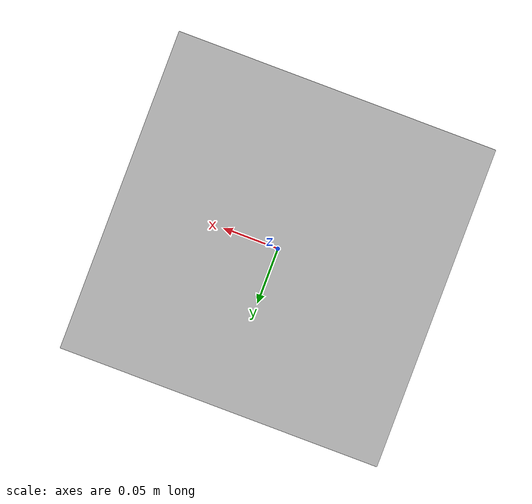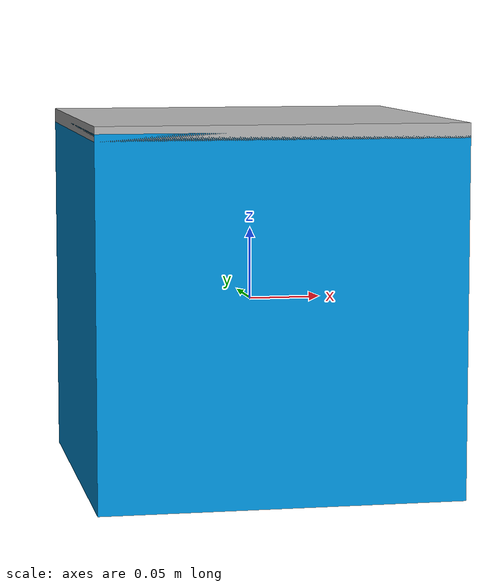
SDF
<?xml version="1.0" ?>
<sdf version="1.6">
  <model name="qr_box_marker_13">
    <static>true</static>
    <link name="link">

      <!-- Top face with QR code texture -->
      <visual name="top_face">
        <geometry>
          <box>
            <size>0.25 0.25 0.01</size> <!-- Reduced dimensions to half -->
          </box>
        </geometry>
        <material>
          <script>
            <uri>model://qr_box_marker_13/materials/scripts</uri>
            <uri>model://qr_box_marker_13/materials/textures/qr_code_13.png</uri>
            <name>qr_code_material_13</name>
          </script>
        </material>
        <pose>0 0 0.125 0 0 0</pose>
      </visual>

      <!-- Side faces with flat color -->
      <visual name="side_faces">
        <geometry>
          <box>
            <size>0.25 0.25 0.25</size> <!-- Reduced dimensions to half -->
          </box>
        </geometry>
        <material>
          <ambient>0.0 0.6 0.9 1</ambient>    <!-- Light blue -->
          <diffuse>0.0 0.6 0.9 1</diffuse>
          <specular>0.1 0.1 0.1 1</specular>
          <emissive>0 0 0 1</emissive>
        </material>
      </visual>

      <!-- Collision box -->
      <collision name="collision">
        <geometry>
          <box>
            <size>0.25 0.25 0.25</size> <!-- Reduced dimensions to half -->
          </box>
        </geometry>
      </collision>

    </link>
  </model>
</sdf>
